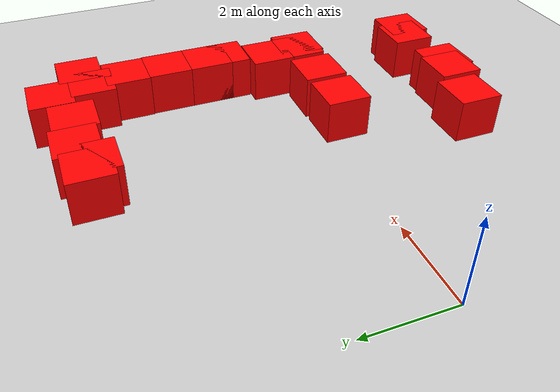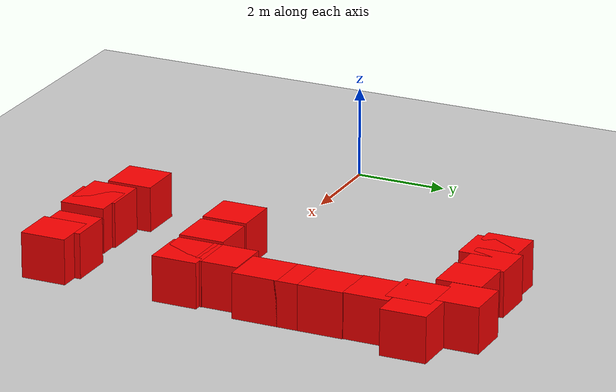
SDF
<sdf version="1.7">
 <world name="default">
  <model name="ground_plane">
   <static>1</static>
   <link name="link">
    <collision name="collision">
     <geometry><plane><normal>0 0 1</normal><size>100 100</size></plane></geometry>
     <surface><friction><ode><mu>100</mu><mu2>50</mu2></ode></friction></surface>
    </collision>
    <visual name="visual">
     <cast_shadows>0</cast_shadows>
     <geometry><plane><normal>0 0 1</normal><size>100 100</size></plane></geometry>
     <material>
      <script><uri>file://media/materials/scripts/gazebo.material</uri><name>Gazebo/Grey</name></script>
     </material>
    </visual>
   </link>
  </model>
  <model name="unit_box_clone">
   <link name="link">
    <inertial>
     <mass>1</mass>
     <inertia>
      <ixx>0.166667</ixx>
      <ixy>0</ixy>
      <ixz>0</ixz>
      <iyy>0.166667</iyy>
      <iyz>0</iyz>
      <izz>0.166667</izz>
     </inertia>
    </inertial>
    <visual name="visual">
     <geometry><box><size>1 1 1</size></box></geometry>
     <material>
      <script><name>Gazebo/Grey</name><uri>file://media/materials/scripts/gazebo.material</uri></script>
      <shader type="pixel"><normal_map>__default__</normal_map></shader>
      <ambient>1 0 0 0</ambient>
      <diffuse>0.7 0.7 0.7 1</diffuse>
      <specular>0.01 0.01 0.01 1</specular>
      <emissive>0 0 0 1</emissive>
     </material>
    </visual>
    <collision name="collision">
     <geometry><box><size>1 1 1</size></box></geometry>
     <surface>
      <friction>
       <ode><mu>1</mu><mu2>1</mu2><fdir1>0 0 0</fdir1><slip1>0</slip1><slip2>0</slip2></ode>
       <torsional>
        <coefficient>1</coefficient>
        <patch_radius>0</patch_radius>
        <surface_radius>0</surface_radius>
        <use_patch_radius>1</use_patch_radius>
        <ode><slip>0</slip></ode>
       </torsional>
      </friction>
      <bounce><restitution_coefficient>0</restitution_coefficient><threshold>1e+06</threshold></bounce>
      <contact>
       <collide_without_contact>0</collide_without_contact>
       <collide_without_contact_bitmask>1</collide_without_contact_bitmask>
       <collide_bitmask>1</collide_bitmask>
       <ode>
        <soft_cfm>0</soft_cfm>
        <soft_erp>0.2</soft_erp>
        <kp>1e+13</kp>
        <kd>1</kd>
        <max_vel>0.01</max_vel>
        <min_depth>0</min_depth>
       </ode>
       <bullet>
        <split_impulse>1</split_impulse>
        <split_impulse_penetration_threshold>-0.01</split_impulse_penetration_threshold>
        <soft_cfm>0</soft_cfm>
        <soft_erp>0.2</soft_erp>
        <kp>1e+13</kp>
        <kd>1</kd>
       </bullet>
      </contact>
     </surface>
    </collision>
   </link>
   <static>0</static>
   <pose>7.86867 -0.323281 0.5 0 -0 0</pose>
  </model>
  <model name="unit_box_clone_clone">
   <link name="link">
    <inertial>
     <mass>1</mass>
     <inertia>
      <ixx>0.166667</ixx>
      <ixy>0</ixy>
      <ixz>0</ixz>
      <iyy>0.166667</iyy>
      <iyz>0</iyz>
      <izz>0.166667</izz>
     </inertia>
    </inertial>
    <visual name="visual">
     <geometry><box><size>1 1 1</size></box></geometry>
     <material>
      <script><name>Gazebo/Grey</name><uri>file://media/materials/scripts/gazebo.material</uri></script>
      <shader type="pixel"><normal_map>__default__</normal_map></shader>
      <ambient>1 0 0 0</ambient>
      <diffuse>0.7 0.7 0.7 1</diffuse>
      <specular>0.01 0.01 0.01 1</specular>
      <emissive>0 0 0 1</emissive>
     </material>
    </visual>
    <collision name="collision">
     <geometry><box><size>1 1 1</size></box></geometry>
     <surface>
      <friction>
       <ode><mu>1</mu><mu2>1</mu2><fdir1>0 0 0</fdir1><slip1>0</slip1><slip2>0</slip2></ode>
       <torsional>
        <coefficient>1</coefficient>
        <patch_radius>0</patch_radius>
        <surface_radius>0</surface_radius>
        <use_patch_radius>1</use_patch_radius>
        <ode><slip>0</slip></ode>
       </torsional>
      </friction>
      <bounce><restitution_coefficient>0</restitution_coefficient><threshold>1e+06</threshold></bounce>
      <contact>
       <collide_without_contact>0</collide_without_contact>
       <collide_without_contact_bitmask>1</collide_without_contact_bitmask>
       <collide_bitmask>1</collide_bitmask>
       <ode>
        <soft_cfm>0</soft_cfm>
        <soft_erp>0.2</soft_erp>
        <kp>1e+13</kp>
        <kd>1</kd>
        <max_vel>0.01</max_vel>
        <min_depth>0</min_depth>
       </ode>
       <bullet>
        <split_impulse>1</split_impulse>
        <split_impulse_penetration_threshold>-0.01</split_impulse_penetration_threshold>
        <soft_cfm>0</soft_cfm>
        <soft_erp>0.2</soft_erp>
        <kp>1e+13</kp>
        <kd>1</kd>
       </bullet>
      </contact>
     </surface>
    </collision>
   </link>
   <static>0</static>
   <pose>7.54908 5.74957 0.5 0 -0 0</pose>
  </model>
  <model name="unit_box_clone_clone_8">
   <link name="link">
    <inertial>
     <mass>1</mass>
     <inertia>
      <ixx>0.166667</ixx>
      <ixy>0</ixy>
      <ixz>0</ixz>
      <iyy>0.166667</iyy>
      <iyz>0</iyz>
      <izz>0.166667</izz>
     </inertia>
    </inertial>
    <visual name="visual">
     <geometry><box><size>1 1 1</size></box></geometry>
     <material>
      <script><name>Gazebo/Grey</name><uri>file://media/materials/scripts/gazebo.material</uri></script>
      <shader type="pixel"><normal_map>__default__</normal_map></shader>
      <ambient>1 0 0 0</ambient>
      <diffuse>0.7 0.7 0.7 1</diffuse>
      <specular>0.01 0.01 0.01 1</specular>
      <emissive>0 0 0 1</emissive>
     </material>
    </visual>
    <collision name="collision">
     <geometry><box><size>1 1 1</size></box></geometry>
     <surface>
      <friction>
       <ode><mu>1</mu><mu2>1</mu2><fdir1>0 0 0</fdir1><slip1>0</slip1><slip2>0</slip2></ode>
       <torsional>
        <coefficient>1</coefficient>
        <patch_radius>0</patch_radius>
        <surface_radius>0</surface_radius>
        <use_patch_radius>1</use_patch_radius>
        <ode><slip>0</slip></ode>
       </torsional>
      </friction>
      <bounce><restitution_coefficient>0</restitution_coefficient><threshold>1e+06</threshold></bounce>
      <contact>
       <collide_without_contact>0</collide_without_contact>
       <collide_without_contact_bitmask>1</collide_without_contact_bitmask>
       <collide_bitmask>1</collide_bitmask>
       <ode>
        <soft_cfm>0</soft_cfm>
        <soft_erp>0.2</soft_erp>
        <kp>1e+13</kp>
        <kd>1</kd>
        <max_vel>0.01</max_vel>
        <min_depth>0</min_depth>
       </ode>
       <bullet>
        <split_impulse>1</split_impulse>
        <split_impulse_penetration_threshold>-0.01</split_impulse_penetration_threshold>
        <soft_cfm>0</soft_cfm>
        <soft_erp>0.2</soft_erp>
        <kp>1e+13</kp>
        <kd>1</kd>
       </bullet>
      </contact>
     </surface>
    </collision>
   </link>
   <static>0</static>
   <pose>7.88438 -3.32843 0.5 0 -0 0</pose>
  </model>
  <model name="unit_box_clone_clone_18">
   <link name="link">
    <inertial>
     <mass>1</mass>
     <inertia>
      <ixx>0.166667</ixx>
      <ixy>0</ixy>
      <ixz>0</ixz>
      <iyy>0.166667</iyy>
      <iyz>0</iyz>
      <izz>0.166667</izz>
     </inertia>
    </inertial>
    <visual name="visual">
     <geometry><box><size>1 1 1</size></box></geometry>
     <material>
      <script><name>Gazebo/Grey</name><uri>file://media/materials/scripts/gazebo.material</uri></script>
      <shader type="pixel"><normal_map>__default__</normal_map></shader>
      <ambient>1 0 0 0</ambient>
      <diffuse>0.7 0.7 0.7 1</diffuse>
      <specular>0.01 0.01 0.01 1</specular>
      <emissive>0 0 0 1</emissive>
     </material>
    </visual>
    <collision name="collision">
     <geometry><box><size>1 1 1</size></box></geometry>
     <surface>
      <friction>
       <ode><mu>1</mu><mu2>1</mu2><fdir1>0 0 0</fdir1><slip1>0</slip1><slip2>0</slip2></ode>
       <torsional>
        <coefficient>1</coefficient>
        <patch_radius>0</patch_radius>
        <surface_radius>0</surface_radius>
        <use_patch_radius>1</use_patch_radius>
        <ode><slip>0</slip></ode>
       </torsional>
      </friction>
      <bounce><restitution_coefficient>0</restitution_coefficient><threshold>1e+06</threshold></bounce>
      <contact>
       <collide_without_contact>0</collide_without_contact>
       <collide_without_contact_bitmask>1</collide_without_contact_bitmask>
       <collide_bitmask>1</collide_bitmask>
       <ode>
        <soft_cfm>0</soft_cfm>
        <soft_erp>0.2</soft_erp>
        <kp>1e+13</kp>
        <kd>1</kd>
        <max_vel>0.01</max_vel>
        <min_depth>0</min_depth>
       </ode>
       <bullet>
        <split_impulse>1</split_impulse>
        <split_impulse_penetration_threshold>-0.01</split_impulse_penetration_threshold>
        <soft_cfm>0</soft_cfm>
        <soft_erp>0.2</soft_erp>
        <kp>1e+13</kp>
        <kd>1</kd>
       </bullet>
      </contact>
     </surface>
    </collision>
   </link>
   <static>0</static>
   <pose>5.46734 -0.362794 0.5 0 -0 0</pose>
  </model>
  <model name="unit_box_clone_clone_20">
   <link name="link">
    <inertial>
     <mass>1</mass>
     <inertia>
      <ixx>0.166667</ixx>
      <ixy>0</ixy>
      <ixz>0</ixz>
      <iyy>0.166667</iyy>
      <iyz>0</iyz>
      <izz>0.166667</izz>
     </inertia>
    </inertial>
    <visual name="visual">
     <geometry><box><size>1 1 1</size></box></geometry>
     <material>
      <script><name>Gazebo/Grey</name><uri>file://media/materials/scripts/gazebo.material</uri></script>
      <shader type="pixel"><normal_map>__default__</normal_map></shader>
      <ambient>1 0 0 0</ambient>
      <diffuse>0.7 0.7 0.7 1</diffuse>
      <specular>0.01 0.01 0.01 1</specular>
      <emissive>0 0 0 1</emissive>
     </material>
    </visual>
    <collision name="collision">
     <geometry><box><size>1 1 1</size></box></geometry>
     <surface>
      <friction>
       <ode><mu>1</mu><mu2>1</mu2><fdir1>0 0 0</fdir1><slip1>0</slip1><slip2>0</slip2></ode>
       <torsional>
        <coefficient>1</coefficient>
        <patch_radius>0</patch_radius>
        <surface_radius>0</surface_radius>
        <use_patch_radius>1</use_patch_radius>
        <ode><slip>0</slip></ode>
       </torsional>
      </friction>
      <bounce><restitution_coefficient>0</restitution_coefficient><threshold>1e+06</threshold></bounce>
      <contact>
       <collide_without_contact>0</collide_without_contact>
       <collide_without_contact_bitmask>1</collide_without_contact_bitmask>
       <collide_bitmask>1</collide_bitmask>
       <ode>
        <soft_cfm>0</soft_cfm>
        <soft_erp>0.2</soft_erp>
        <kp>1e+13</kp>
        <kd>1</kd>
        <max_vel>0.01</max_vel>
        <min_depth>0</min_depth>
       </ode>
       <bullet>
        <split_impulse>1</split_impulse>
        <split_impulse_penetration_threshold>-0.01</split_impulse_penetration_threshold>
        <soft_cfm>0</soft_cfm>
        <soft_erp>0.2</soft_erp>
        <kp>1e+13</kp>
        <kd>1</kd>
       </bullet>
      </contact>
     </surface>
    </collision>
   </link>
   <static>0</static>
   <pose>5.61056 -3.34646 0.5 0 -0 0</pose>
  </model>
  <model name="unit_box_clone_clone_27">
   <link name="link">
    <inertial>
     <mass>1</mass>
     <inertia>
      <ixx>0.166667</ixx>
      <ixy>0</ixy>
      <ixz>0</ixz>
      <iyy>0.166667</iyy>
      <iyz>0</iyz>
      <izz>0.166667</izz>
     </inertia>
    </inertial>
    <visual name="visual">
     <geometry><box><size>1 1 1</size></box></geometry>
     <material>
      <script><name>Gazebo/Grey</name><uri>file://media/materials/scripts/gazebo.material</uri></script>
      <shader type="pixel"><normal_map>__default__</normal_map></shader>
      <ambient>1 0 0 0</ambient>
      <diffuse>0.7 0.7 0.7 1</diffuse>
      <specular>0.01 0.01 0.01 1</specular>
      <emissive>0 0 0 1</emissive>
     </material>
    </visual>
    <collision name="collision">
     <geometry><box><size>1 1 1</size></box></geometry>
     <surface>
      <friction>
       <ode><mu>1</mu><mu2>1</mu2><fdir1>0 0 0</fdir1><slip1>0</slip1><slip2>0</slip2></ode>
       <torsional>
        <coefficient>1</coefficient>
        <patch_radius>0</patch_radius>
        <surface_radius>0</surface_radius>
        <use_patch_radius>1</use_patch_radius>
        <ode><slip>0</slip></ode>
       </torsional>
      </friction>
      <bounce><restitution_coefficient>0</restitution_coefficient><threshold>1e+06</threshold></bounce>
      <contact>
       <collide_without_contact>0</collide_without_contact>
       <collide_without_contact_bitmask>1</collide_without_contact_bitmask>
       <collide_bitmask>1</collide_bitmask>
       <ode>
        <soft_cfm>0</soft_cfm>
        <soft_erp>0.2</soft_erp>
        <kp>1e+13</kp>
        <kd>1</kd>
        <max_vel>0.01</max_vel>
        <min_depth>0</min_depth>
       </ode>
       <bullet>
        <split_impulse>1</split_impulse>
        <split_impulse_penetration_threshold>-0.01</split_impulse_penetration_threshold>
        <soft_cfm>0</soft_cfm>
        <soft_erp>0.2</soft_erp>
        <kp>1e+13</kp>
        <kd>1</kd>
       </bullet>
      </contact>
     </surface>
    </collision>
   </link>
   <static>0</static>
   <pose>5.61051 5.46702 0.5 0 -0 0</pose>
  </model>
  <model name="unit_box_clone_clone_28">
   <link name="link">
    <inertial>
     <mass>1</mass>
     <inertia>
      <ixx>0.166667</ixx>
      <ixy>0</ixy>
      <ixz>0</ixz>
      <iyy>0.166667</iyy>
      <iyz>0</iyz>
      <izz>0.166667</izz>
     </inertia>
    </inertial>
    <visual name="visual">
     <geometry><box><size>1 1 1</size></box></geometry>
     <material>
      <script><name>Gazebo/Grey</name><uri>file://media/materials/scripts/gazebo.material</uri></script>
      <shader type="pixel"><normal_map>__default__</normal_map></shader>
      <ambient>1 0 0 0</ambient>
      <diffuse>0.7 0.7 0.7 1</diffuse>
      <specular>0.01 0.01 0.01 1</specular>
      <emissive>0 0 0 1</emissive>
     </material>
    </visual>
    <collision name="collision">
     <geometry><box><size>1 1 1</size></box></geometry>
     <surface>
      <friction>
       <ode><mu>1</mu><mu2>1</mu2><fdir1>0 0 0</fdir1><slip1>0</slip1><slip2>0</slip2></ode>
       <torsional>
        <coefficient>1</coefficient>
        <patch_radius>0</patch_radius>
        <surface_radius>0</surface_radius>
        <use_patch_radius>1</use_patch_radius>
        <ode><slip>0</slip></ode>
       </torsional>
      </friction>
      <bounce><restitution_coefficient>0</restitution_coefficient><threshold>1e+06</threshold></bounce>
      <contact>
       <collide_without_contact>0</collide_without_contact>
       <collide_without_contact_bitmask>1</collide_without_contact_bitmask>
       <collide_bitmask>1</collide_bitmask>
       <ode>
        <soft_cfm>0</soft_cfm>
        <soft_erp>0.2</soft_erp>
        <kp>1e+13</kp>
        <kd>1</kd>
        <max_vel>0.01</max_vel>
        <min_depth>0</min_depth>
       </ode>
       <bullet>
        <split_impulse>1</split_impulse>
        <split_impulse_penetration_threshold>-0.01</split_impulse_penetration_threshold>
        <soft_cfm>0</soft_cfm>
        <soft_erp>0.2</soft_erp>
        <kp>1e+13</kp>
        <kd>1</kd>
       </bullet>
      </contact>
     </surface>
    </collision>
   </link>
   <static>0</static>
   <pose>7.9782 3.98725 0.5 0 -0 0</pose>
  </model>
  <model name="unit_box_clone_clone_29">
   <link name="link">
    <inertial>
     <mass>1</mass>
     <inertia>
      <ixx>0.166667</ixx>
      <ixy>0</ixy>
      <ixz>0</ixz>
      <iyy>0.166667</iyy>
      <iyz>0</iyz>
      <izz>0.166667</izz>
     </inertia>
    </inertial>
    <visual name="visual">
     <geometry><box><size>1 1 1</size></box></geometry>
     <material>
      <script><name>Gazebo/Grey</name><uri>file://media/materials/scripts/gazebo.material</uri></script>
      <shader type="pixel"><normal_map>__default__</normal_map></shader>
      <ambient>1 0 0 0</ambient>
      <diffuse>0.7 0.7 0.7 1</diffuse>
      <specular>0.01 0.01 0.01 1</specular>
      <emissive>0 0 0 1</emissive>
     </material>
    </visual>
    <collision name="collision">
     <geometry><box><size>1 1 1</size></box></geometry>
     <surface>
      <friction>
       <ode><mu>1</mu><mu2>1</mu2><fdir1>0 0 0</fdir1><slip1>0</slip1><slip2>0</slip2></ode>
       <torsional>
        <coefficient>1</coefficient>
        <patch_radius>0</patch_radius>
        <surface_radius>0</surface_radius>
        <use_patch_radius>1</use_patch_radius>
        <ode><slip>0</slip></ode>
       </torsional>
      </friction>
      <bounce><restitution_coefficient>0</restitution_coefficient><threshold>1e+06</threshold></bounce>
      <contact>
       <collide_without_contact>0</collide_without_contact>
       <collide_without_contact_bitmask>1</collide_without_contact_bitmask>
       <collide_bitmask>1</collide_bitmask>
       <ode>
        <soft_cfm>0</soft_cfm>
        <soft_erp>0.2</soft_erp>
        <kp>1e+13</kp>
        <kd>1</kd>
        <max_vel>0.01</max_vel>
        <min_depth>0</min_depth>
       </ode>
       <bullet>
        <split_impulse>1</split_impulse>
        <split_impulse_penetration_threshold>-0.01</split_impulse_penetration_threshold>
        <soft_cfm>0</soft_cfm>
        <soft_erp>0.2</soft_erp>
        <kp>1e+13</kp>
        <kd>1</kd>
       </bullet>
      </contact>
     </surface>
    </collision>
   </link>
   <static>0</static>
   <pose>8 3 0.5 0 -0 0</pose>
  </model>
  <model name="unit_box_clone_clone_30">
   <link name="link">
    <inertial>
     <mass>1</mass>
     <inertia>
      <ixx>0.166667</ixx>
      <ixy>0</ixy>
      <ixz>0</ixz>
      <iyy>0.166667</iyy>
      <iyz>0</iyz>
      <izz>0.166667</izz>
     </inertia>
    </inertial>
    <visual name="visual">
     <geometry><box><size>1 1 1</size></box></geometry>
     <material>
      <script><name>Gazebo/Grey</name><uri>file://media/materials/scripts/gazebo.material</uri></script>
      <shader type="pixel"><normal_map>__default__</normal_map></shader>
      <ambient>1 0 0 0</ambient>
      <diffuse>0.7 0.7 0.7 1</diffuse>
      <specular>0.01 0.01 0.01 1</specular>
      <emissive>0 0 0 1</emissive>
     </material>
    </visual>
    <collision name="collision">
     <geometry><box><size>1 1 1</size></box></geometry>
     <surface>
      <friction>
       <ode><mu>1</mu><mu2>1</mu2><fdir1>0 0 0</fdir1><slip1>0</slip1><slip2>0</slip2></ode>
       <torsional>
        <coefficient>1</coefficient>
        <patch_radius>0</patch_radius>
        <surface_radius>0</surface_radius>
        <use_patch_radius>1</use_patch_radius>
        <ode><slip>0</slip></ode>
       </torsional>
      </friction>
      <bounce><restitution_coefficient>0</restitution_coefficient><threshold>1e+06</threshold></bounce>
      <contact>
       <collide_without_contact>0</collide_without_contact>
       <collide_without_contact_bitmask>1</collide_without_contact_bitmask>
       <collide_bitmask>1</collide_bitmask>
       <ode>
        <soft_cfm>0</soft_cfm>
        <soft_erp>0.2</soft_erp>
        <kp>1e+13</kp>
        <kd>1</kd>
        <max_vel>0.01</max_vel>
        <min_depth>0</min_depth>
       </ode>
       <bullet>
        <split_impulse>1</split_impulse>
        <split_impulse_penetration_threshold>-0.01</split_impulse_penetration_threshold>
        <soft_cfm>0</soft_cfm>
        <soft_erp>0.2</soft_erp>
        <kp>1e+13</kp>
        <kd>1</kd>
       </bullet>
      </contact>
     </surface>
    </collision>
   </link>
   <static>0</static>
   <pose>8 1.54814 0.5 0 -0 0</pose>
  </model>
  <model name="unit_box_clone_clone_31">
   <link name="link">
    <inertial>
     <mass>1</mass>
     <inertia>
      <ixx>0.166667</ixx>
      <ixy>0</ixy>
      <ixz>0</ixz>
      <iyy>0.166667</iyy>
      <iyz>0</iyz>
      <izz>0.166667</izz>
     </inertia>
    </inertial>
    <visual name="visual">
     <geometry><box><size>1 1 1</size></box></geometry>
     <material>
      <script><name>Gazebo/Grey</name><uri>file://media/materials/scripts/gazebo.material</uri></script>
      <shader type="pixel"><normal_map>__default__</normal_map></shader>
      <ambient>1 0 0 0</ambient>
      <diffuse>0.7 0.7 0.7 1</diffuse>
      <specular>0.01 0.01 0.01 1</specular>
      <emissive>0 0 0 1</emissive>
     </material>
    </visual>
    <collision name="collision">
     <geometry><box><size>1 1 1</size></box></geometry>
     <surface>
      <friction>
       <ode><mu>1</mu><mu2>1</mu2><fdir1>0 0 0</fdir1><slip1>0</slip1><slip2>0</slip2></ode>
       <torsional>
        <coefficient>1</coefficient>
        <patch_radius>0</patch_radius>
        <surface_radius>0</surface_radius>
        <use_patch_radius>1</use_patch_radius>
        <ode><slip>0</slip></ode>
       </torsional>
      </friction>
      <bounce><restitution_coefficient>0</restitution_coefficient><threshold>1e+06</threshold></bounce>
      <contact>
       <collide_without_contact>0</collide_without_contact>
       <collide_without_contact_bitmask>1</collide_without_contact_bitmask>
       <collide_bitmask>1</collide_bitmask>
       <ode>
        <soft_cfm>0</soft_cfm>
        <soft_erp>0.2</soft_erp>
        <kp>1e+13</kp>
        <kd>1</kd>
        <max_vel>0.01</max_vel>
        <min_depth>0</min_depth>
       </ode>
       <bullet>
        <split_impulse>1</split_impulse>
        <split_impulse_penetration_threshold>-0.01</split_impulse_penetration_threshold>
        <soft_cfm>0</soft_cfm>
        <soft_erp>0.2</soft_erp>
        <kp>1e+13</kp>
        <kd>1</kd>
       </bullet>
      </contact>
     </surface>
    </collision>
   </link>
   <static>0</static>
   <pose>8 2 0.5 0 -0 0</pose>
  </model>
  <model name="unit_box_clone_clone_32">
   <link name="link">
    <inertial>
     <mass>1</mass>
     <inertia>
      <ixx>0.166667</ixx>
      <ixy>0</ixy>
      <ixz>0</ixz>
      <iyy>0.166667</iyy>
      <iyz>0</iyz>
      <izz>0.166667</izz>
     </inertia>
    </inertial>
    <visual name="visual">
     <geometry><box><size>1 1 1</size></box></geometry>
     <material>
      <script><name>Gazebo/Grey</name><uri>file://media/materials/scripts/gazebo.material</uri></script>
      <shader type="pixel"><normal_map>__default__</normal_map></shader>
      <ambient>1 0 0 0</ambient>
      <diffuse>0.7 0.7 0.7 1</diffuse>
      <specular>0.01 0.01 0.01 1</specular>
      <emissive>0 0 0 1</emissive>
     </material>
    </visual>
    <collision name="collision">
     <geometry><box><size>1 1 1</size></box></geometry>
     <surface>
      <friction>
       <ode><mu>1</mu><mu2>1</mu2><fdir1>0 0 0</fdir1><slip1>0</slip1><slip2>0</slip2></ode>
       <torsional>
        <coefficient>1</coefficient>
        <patch_radius>0</patch_radius>
        <surface_radius>0</surface_radius>
        <use_patch_radius>1</use_patch_radius>
        <ode><slip>0</slip></ode>
       </torsional>
      </friction>
      <bounce><restitution_coefficient>0</restitution_coefficient><threshold>1e+06</threshold></bounce>
      <contact>
       <collide_without_contact>0</collide_without_contact>
       <collide_without_contact_bitmask>1</collide_without_contact_bitmask>
       <collide_bitmask>1</collide_bitmask>
       <ode>
        <soft_cfm>0</soft_cfm>
        <soft_erp>0.2</soft_erp>
        <kp>1e+13</kp>
        <kd>1</kd>
        <max_vel>0.01</max_vel>
        <min_depth>0</min_depth>
       </ode>
       <bullet>
        <split_impulse>1</split_impulse>
        <split_impulse_penetration_threshold>-0.01</split_impulse_penetration_threshold>
        <soft_cfm>0</soft_cfm>
        <soft_erp>0.2</soft_erp>
        <kp>1e+13</kp>
        <kd>1</kd>
       </bullet>
      </contact>
     </surface>
    </collision>
   </link>
   <static>0</static>
   <pose>7.71213 0.525027 0.5 0 -0 0</pose>
  </model>
  <model name="unit_box_clone_clone_33">
   <link name="link">
    <inertial>
     <mass>1</mass>
     <inertia>
      <ixx>0.166667</ixx>
      <ixy>0</ixy>
      <ixz>0</ixz>
      <iyy>0.166667</iyy>
      <iyz>0</iyz>
      <izz>0.166667</izz>
     </inertia>
    </inertial>
    <visual name="visual">
     <geometry><box><size>1 1 1</size></box></geometry>
     <material>
      <script><name>Gazebo/Grey</name><uri>file://media/materials/scripts/gazebo.material</uri></script>
      <shader type="pixel"><normal_map>__default__</normal_map></shader>
      <ambient>1 0 0 0</ambient>
      <diffuse>0.7 0.7 0.7 1</diffuse>
      <specular>0.01 0.01 0.01 1</specular>
      <emissive>0 0 0 1</emissive>
     </material>
    </visual>
    <collision name="collision">
     <geometry><box><size>1 1 1</size></box></geometry>
     <surface>
      <friction>
       <ode><mu>1</mu><mu2>1</mu2><fdir1>0 0 0</fdir1><slip1>0</slip1><slip2>0</slip2></ode>
       <torsional>
        <coefficient>1</coefficient>
        <patch_radius>0</patch_radius>
        <surface_radius>0</surface_radius>
        <use_patch_radius>1</use_patch_radius>
        <ode><slip>0</slip></ode>
       </torsional>
      </friction>
      <bounce><restitution_coefficient>0</restitution_coefficient><threshold>1e+06</threshold></bounce>
      <contact>
       <collide_without_contact>0</collide_without_contact>
       <collide_without_contact_bitmask>1</collide_without_contact_bitmask>
       <collide_bitmask>1</collide_bitmask>
       <ode>
        <soft_cfm>0</soft_cfm>
        <soft_erp>0.2</soft_erp>
        <kp>1e+13</kp>
        <kd>1</kd>
        <max_vel>0.01</max_vel>
        <min_depth>0</min_depth>
       </ode>
       <bullet>
        <split_impulse>1</split_impulse>
        <split_impulse_penetration_threshold>-0.01</split_impulse_penetration_threshold>
        <soft_cfm>0</soft_cfm>
        <soft_erp>0.2</soft_erp>
        <kp>1e+13</kp>
        <kd>1</kd>
       </bullet>
      </contact>
     </surface>
    </collision>
   </link>
   <static>0</static>
   <pose>7.72473 -0.278843 0.5 0 -0 0</pose>
  </model>
  <model name="unit_box_clone_clone_34">
   <link name="link">
    <inertial>
     <mass>1</mass>
     <inertia>
      <ixx>0.166667</ixx>
      <ixy>0</ixy>
      <ixz>0</ixz>
      <iyy>0.166667</iyy>
      <iyz>0</iyz>
      <izz>0.166667</izz>
     </inertia>
    </inertial>
    <visual name="visual">
     <geometry><box><size>1 1 1</size></box></geometry>
     <material>
      <script><name>Gazebo/Grey</name><uri>file://media/materials/scripts/gazebo.material</uri></script>
      <shader type="pixel"><normal_map>__default__</normal_map></shader>
      <ambient>1 0 0 0</ambient>
      <diffuse>0.7 0.7 0.7 1</diffuse>
      <specular>0.01 0.01 0.01 1</specular>
      <emissive>0 0 0 1</emissive>
     </material>
    </visual>
    <collision name="collision">
     <geometry><box><size>1 1 1</size></box></geometry>
     <surface>
      <friction>
       <ode><mu>1</mu><mu2>1</mu2><fdir1>0 0 0</fdir1><slip1>0</slip1><slip2>0</slip2></ode>
       <torsional>
        <coefficient>1</coefficient>
        <patch_radius>0</patch_radius>
        <surface_radius>0</surface_radius>
        <use_patch_radius>1</use_patch_radius>
        <ode><slip>0</slip></ode>
       </torsional>
      </friction>
      <bounce><restitution_coefficient>0</restitution_coefficient><threshold>1e+06</threshold></bounce>
      <contact>
       <collide_without_contact>0</collide_without_contact>
       <collide_without_contact_bitmask>1</collide_without_contact_bitmask>
       <collide_bitmask>1</collide_bitmask>
       <ode>
        <soft_cfm>0</soft_cfm>
        <soft_erp>0.2</soft_erp>
        <kp>1e+13</kp>
        <kd>1</kd>
        <max_vel>0.01</max_vel>
        <min_depth>0</min_depth>
       </ode>
       <bullet>
        <split_impulse>1</split_impulse>
        <split_impulse_penetration_threshold>-0.01</split_impulse_penetration_threshold>
        <soft_cfm>0</soft_cfm>
        <soft_erp>0.2</soft_erp>
        <kp>1e+13</kp>
        <kd>1</kd>
       </bullet>
      </contact>
     </surface>
    </collision>
   </link>
   <static>0</static>
   <pose>6.5942 -0.337367 0.5 0 -0 0</pose>
  </model>
  <model name="unit_box_clone_clone_43">
   <link name="link">
    <inertial>
     <mass>1</mass>
     <inertia>
      <ixx>0.166667</ixx>
      <ixy>0</ixy>
      <ixz>0</ixz>
      <iyy>0.166667</iyy>
      <iyz>0</iyz>
      <izz>0.166667</izz>
     </inertia>
    </inertial>
    <visual name="visual">
     <geometry><box><size>1 1 1</size></box></geometry>
     <material>
      <script><name>Gazebo/Grey</name><uri>file://media/materials/scripts/gazebo.material</uri></script>
      <shader type="pixel"><normal_map>__default__</normal_map></shader>
      <ambient>1 0 0 0</ambient>
      <diffuse>0.7 0.7 0.7 1</diffuse>
      <specular>0.01 0.01 0.01 1</specular>
      <emissive>0 0 0 1</emissive>
     </material>
    </visual>
    <collision name="collision">
     <geometry><box><size>1 1 1</size></box></geometry>
     <surface>
      <friction>
       <ode><mu>1</mu><mu2>1</mu2><fdir1>0 0 0</fdir1><slip1>0</slip1><slip2>0</slip2></ode>
       <torsional>
        <coefficient>1</coefficient>
        <patch_radius>0</patch_radius>
        <surface_radius>0</surface_radius>
        <use_patch_radius>1</use_patch_radius>
        <ode><slip>0</slip></ode>
       </torsional>
      </friction>
      <bounce><restitution_coefficient>0</restitution_coefficient><threshold>1e+06</threshold></bounce>
      <contact>
       <collide_without_contact>0</collide_without_contact>
       <collide_without_contact_bitmask>1</collide_without_contact_bitmask>
       <collide_bitmask>1</collide_bitmask>
       <ode>
        <soft_cfm>0</soft_cfm>
        <soft_erp>0.2</soft_erp>
        <kp>1e+13</kp>
        <kd>1</kd>
        <max_vel>0.01</max_vel>
        <min_depth>0</min_depth>
       </ode>
       <bullet>
        <split_impulse>1</split_impulse>
        <split_impulse_penetration_threshold>-0.01</split_impulse_penetration_threshold>
        <soft_cfm>0</soft_cfm>
        <soft_erp>0.2</soft_erp>
        <kp>1e+13</kp>
        <kd>1</kd>
       </bullet>
      </contact>
     </surface>
    </collision>
   </link>
   <static>0</static>
   <pose>4.96868 5.19912 0.5 0 -0 0</pose>
  </model>
  <model name="unit_box_clone_clone_44">
   <link name="link">
    <inertial>
     <mass>1</mass>
     <inertia>
      <ixx>0.166667</ixx>
      <ixy>0</ixy>
      <ixz>0</ixz>
      <iyy>0.166667</iyy>
      <iyz>0</iyz>
      <izz>0.166667</izz>
     </inertia>
    </inertial>
    <visual name="visual">
     <geometry><box><size>1 1 1</size></box></geometry>
     <material>
      <script><name>Gazebo/Grey</name><uri>file://media/materials/scripts/gazebo.material</uri></script>
      <shader type="pixel"><normal_map>__default__</normal_map></shader>
      <ambient>1 0 0 0</ambient>
      <diffuse>0.7 0.7 0.7 1</diffuse>
      <specular>0.01 0.01 0.01 1</specular>
      <emissive>0 0 0 1</emissive>
     </material>
    </visual>
    <collision name="collision">
     <geometry><box><size>1 1 1</size></box></geometry>
     <surface>
      <friction>
       <ode><mu>1</mu><mu2>1</mu2><fdir1>0 0 0</fdir1><slip1>0</slip1><slip2>0</slip2></ode>
       <torsional>
        <coefficient>1</coefficient>
        <patch_radius>0</patch_radius>
        <surface_radius>0</surface_radius>
        <use_patch_radius>1</use_patch_radius>
        <ode><slip>0</slip></ode>
       </torsional>
      </friction>
      <bounce><restitution_coefficient>0</restitution_coefficient><threshold>1e+06</threshold></bounce>
      <contact>
       <collide_without_contact>0</collide_without_contact>
       <collide_without_contact_bitmask>1</collide_without_contact_bitmask>
       <collide_bitmask>1</collide_bitmask>
       <ode>
        <soft_cfm>0</soft_cfm>
        <soft_erp>0.2</soft_erp>
        <kp>1e+13</kp>
        <kd>1</kd>
        <max_vel>0.01</max_vel>
        <min_depth>0</min_depth>
       </ode>
       <bullet>
        <split_impulse>1</split_impulse>
        <split_impulse_penetration_threshold>-0.01</split_impulse_penetration_threshold>
        <soft_cfm>0</soft_cfm>
        <soft_erp>0.2</soft_erp>
        <kp>1e+13</kp>
        <kd>1</kd>
       </bullet>
      </contact>
     </surface>
    </collision>
   </link>
   <static>0</static>
   <pose>4.75783 5.34832 0.5 0 -0 0</pose>
  </model>
  <model name="unit_box_clone_clone_45">
   <link name="link">
    <inertial>
     <mass>1</mass>
     <inertia>
      <ixx>0.166667</ixx>
      <ixy>0</ixy>
      <ixz>0</ixz>
      <iyy>0.166667</iyy>
      <iyz>0</iyz>
      <izz>0.166667</izz>
     </inertia>
    </inertial>
    <visual name="visual">
     <geometry><box><size>1 1 1</size></box></geometry>
     <material>
      <script><name>Gazebo/Grey</name><uri>file://media/materials/scripts/gazebo.material</uri></script>
      <shader type="pixel"><normal_map>__default__</normal_map></shader>
      <ambient>1 0 0 0</ambient>
      <diffuse>0.7 0.7 0.7 1</diffuse>
      <specular>0.01 0.01 0.01 1</specular>
      <emissive>0 0 0 1</emissive>
     </material>
    </visual>
    <collision name="collision">
     <geometry><box><size>1 1 1</size></box></geometry>
     <surface>
      <friction>
       <ode><mu>1</mu><mu2>1</mu2><fdir1>0 0 0</fdir1><slip1>0</slip1><slip2>0</slip2></ode>
       <torsional>
        <coefficient>1</coefficient>
        <patch_radius>0</patch_radius>
        <surface_radius>0</surface_radius>
        <use_patch_radius>1</use_patch_radius>
        <ode><slip>0</slip></ode>
       </torsional>
      </friction>
      <bounce><restitution_coefficient>0</restitution_coefficient><threshold>1e+06</threshold></bounce>
      <contact>
       <collide_without_contact>0</collide_without_contact>
       <collide_without_contact_bitmask>1</collide_without_contact_bitmask>
       <collide_bitmask>1</collide_bitmask>
       <ode>
        <soft_cfm>0</soft_cfm>
        <soft_erp>0.2</soft_erp>
        <kp>1e+13</kp>
        <kd>1</kd>
        <max_vel>0.01</max_vel>
        <min_depth>0</min_depth>
       </ode>
       <bullet>
        <split_impulse>1</split_impulse>
        <split_impulse_penetration_threshold>-0.01</split_impulse_penetration_threshold>
        <soft_cfm>0</soft_cfm>
        <soft_erp>0.2</soft_erp>
        <kp>1e+13</kp>
        <kd>1</kd>
       </bullet>
      </contact>
     </surface>
    </collision>
   </link>
   <static>0</static>
   <pose>6.53965 5.3828 0.5 0 -0 0</pose>
  </model>
  <model name="unit_box_clone_clone_46">
   <link name="link">
    <inertial>
     <mass>1</mass>
     <inertia>
      <ixx>0.166667</ixx>
      <ixy>0</ixy>
      <ixz>0</ixz>
      <iyy>0.166667</iyy>
      <iyz>0</iyz>
      <izz>0.166667</izz>
     </inertia>
    </inertial>
    <visual name="visual">
     <geometry><box><size>1 1 1</size></box></geometry>
     <material>
      <script><name>Gazebo/Grey</name><uri>file://media/materials/scripts/gazebo.material</uri></script>
      <shader type="pixel"><normal_map>__default__</normal_map></shader>
      <ambient>1 0 0 0</ambient>
      <diffuse>0.7 0.7 0.7 1</diffuse>
      <specular>0.01 0.01 0.01 1</specular>
      <emissive>0 0 0 1</emissive>
     </material>
    </visual>
    <collision name="collision">
     <geometry><box><size>1 1 1</size></box></geometry>
     <surface>
      <friction>
       <ode><mu>1</mu><mu2>1</mu2><fdir1>0 0 0</fdir1><slip1>0</slip1><slip2>0</slip2></ode>
       <torsional>
        <coefficient>1</coefficient>
        <patch_radius>0</patch_radius>
        <surface_radius>0</surface_radius>
        <use_patch_radius>1</use_patch_radius>
        <ode><slip>0</slip></ode>
       </torsional>
      </friction>
      <bounce><restitution_coefficient>0</restitution_coefficient><threshold>1e+06</threshold></bounce>
      <contact>
       <collide_without_contact>0</collide_without_contact>
       <collide_without_contact_bitmask>1</collide_without_contact_bitmask>
       <collide_bitmask>1</collide_bitmask>
       <ode>
        <soft_cfm>0</soft_cfm>
        <soft_erp>0.2</soft_erp>
        <kp>1e+13</kp>
        <kd>1</kd>
        <max_vel>0.01</max_vel>
        <min_depth>0</min_depth>
       </ode>
       <bullet>
        <split_impulse>1</split_impulse>
        <split_impulse_penetration_threshold>-0.01</split_impulse_penetration_threshold>
        <soft_cfm>0</soft_cfm>
        <soft_erp>0.2</soft_erp>
        <kp>1e+13</kp>
        <kd>1</kd>
       </bullet>
      </contact>
     </surface>
    </collision>
   </link>
   <static>0</static>
   <pose>8.4314 5 0.5 0 -0 0</pose>
  </model>
  <model name="unit_box_clone_clone_47">
   <link name="link">
    <inertial>
     <mass>1</mass>
     <inertia>
      <ixx>0.166667</ixx>
      <ixy>0</ixy>
      <ixz>0</ixz>
      <iyy>0.166667</iyy>
      <iyz>0</iyz>
      <izz>0.166667</izz>
     </inertia>
    </inertial>
    <visual name="visual">
     <geometry><box><size>1 1 1</size></box></geometry>
     <material>
      <script><name>Gazebo/Grey</name><uri>file://media/materials/scripts/gazebo.material</uri></script>
      <shader type="pixel"><normal_map>__default__</normal_map></shader>
      <ambient>1 0 0 0</ambient>
      <diffuse>0.7 0.7 0.7 1</diffuse>
      <specular>0.01 0.01 0.01 1</specular>
      <emissive>0 0 0 1</emissive>
     </material>
    </visual>
    <collision name="collision">
     <geometry><box><size>1 1 1</size></box></geometry>
     <surface>
      <friction>
       <ode><mu>1</mu><mu2>1</mu2><fdir1>0 0 0</fdir1><slip1>0</slip1><slip2>0</slip2></ode>
       <torsional>
        <coefficient>1</coefficient>
        <patch_radius>0</patch_radius>
        <surface_radius>0</surface_radius>
        <use_patch_radius>1</use_patch_radius>
        <ode><slip>0</slip></ode>
       </torsional>
      </friction>
      <bounce><restitution_coefficient>0</restitution_coefficient><threshold>1e+06</threshold></bounce>
      <contact>
       <collide_without_contact>0</collide_without_contact>
       <collide_without_contact_bitmask>1</collide_without_contact_bitmask>
       <collide_bitmask>1</collide_bitmask>
       <ode>
        <soft_cfm>0</soft_cfm>
        <soft_erp>0.2</soft_erp>
        <kp>1e+13</kp>
        <kd>1</kd>
        <max_vel>0.01</max_vel>
        <min_depth>0</min_depth>
       </ode>
       <bullet>
        <split_impulse>1</split_impulse>
        <split_impulse_penetration_threshold>-0.01</split_impulse_penetration_threshold>
        <soft_cfm>0</soft_cfm>
        <soft_erp>0.2</soft_erp>
        <kp>1e+13</kp>
        <kd>1</kd>
       </bullet>
      </contact>
     </surface>
    </collision>
   </link>
   <static>0</static>
   <pose>7.77652 4.81648 0.5 0 -0 0</pose>
  </model>
  <model name="unit_box_clone_clone_48">
   <link name="link">
    <inertial>
     <mass>1</mass>
     <inertia>
      <ixx>0.166667</ixx>
      <ixy>0</ixy>
      <ixz>0</ixz>
      <iyy>0.166667</iyy>
      <iyz>0</iyz>
      <izz>0.166667</izz>
     </inertia>
    </inertial>
    <visual name="visual">
     <geometry><box><size>1 1 1</size></box></geometry>
     <material>
      <script><name>Gazebo/Grey</name><uri>file://media/materials/scripts/gazebo.material</uri></script>
      <shader type="pixel"><normal_map>__default__</normal_map></shader>
      <ambient>1 0 0 0</ambient>
      <diffuse>0.7 0.7 0.7 1</diffuse>
      <specular>0.01 0.01 0.01 1</specular>
      <emissive>0 0 0 1</emissive>
     </material>
    </visual>
    <collision name="collision">
     <geometry><box><size>1 1 1</size></box></geometry>
     <surface>
      <friction>
       <ode><mu>1</mu><mu2>1</mu2><fdir1>0 0 0</fdir1><slip1>0</slip1><slip2>0</slip2></ode>
       <torsional>
        <coefficient>1</coefficient>
        <patch_radius>0</patch_radius>
        <surface_radius>0</surface_radius>
        <use_patch_radius>1</use_patch_radius>
        <ode><slip>0</slip></ode>
       </torsional>
      </friction>
      <bounce><restitution_coefficient>0</restitution_coefficient><threshold>1e+06</threshold></bounce>
      <contact>
       <collide_without_contact>0</collide_without_contact>
       <collide_without_contact_bitmask>1</collide_without_contact_bitmask>
       <collide_bitmask>1</collide_bitmask>
       <ode>
        <soft_cfm>0</soft_cfm>
        <soft_erp>0.2</soft_erp>
        <kp>1e+13</kp>
        <kd>1</kd>
        <max_vel>0.01</max_vel>
        <min_depth>0</min_depth>
       </ode>
       <bullet>
        <split_impulse>1</split_impulse>
        <split_impulse_penetration_threshold>-0.01</split_impulse_penetration_threshold>
        <soft_cfm>0</soft_cfm>
        <soft_erp>0.2</soft_erp>
        <kp>1e+13</kp>
        <kd>1</kd>
       </bullet>
      </contact>
     </surface>
    </collision>
   </link>
   <static>0</static>
   <pose>7.45295 -3.19537 0.5 0 -0 0</pose>
  </model>
  <model name="unit_box_clone_clone_49">
   <link name="link">
    <inertial>
     <mass>1</mass>
     <inertia>
      <ixx>0.166667</ixx>
      <ixy>0</ixy>
      <ixz>0</ixz>
      <iyy>0.166667</iyy>
      <iyz>0</iyz>
      <izz>0.166667</izz>
     </inertia>
    </inertial>
    <visual name="visual">
     <geometry><box><size>1 1 1</size></box></geometry>
     <material>
      <script><name>Gazebo/Grey</name><uri>file://media/materials/scripts/gazebo.material</uri></script>
      <shader type="pixel"><normal_map>__default__</normal_map></shader>
      <ambient>1 0 0 0</ambient>
      <diffuse>0.7 0.7 0.7 1</diffuse>
      <specular>0.01 0.01 0.01 1</specular>
      <emissive>0 0 0 1</emissive>
     </material>
    </visual>
    <collision name="collision">
     <geometry><box><size>1 1 1</size></box></geometry>
     <surface>
      <friction>
       <ode><mu>1</mu><mu2>1</mu2><fdir1>0 0 0</fdir1><slip1>0</slip1><slip2>0</slip2></ode>
       <torsional>
        <coefficient>1</coefficient>
        <patch_radius>0</patch_radius>
        <surface_radius>0</surface_radius>
        <use_patch_radius>1</use_patch_radius>
        <ode><slip>0</slip></ode>
       </torsional>
      </friction>
      <bounce><restitution_coefficient>0</restitution_coefficient><threshold>1e+06</threshold></bounce>
      <contact>
       <collide_without_contact>0</collide_without_contact>
       <collide_without_contact_bitmask>1</collide_without_contact_bitmask>
       <collide_bitmask>1</collide_bitmask>
       <ode>
        <soft_cfm>0</soft_cfm>
        <soft_erp>0.2</soft_erp>
        <kp>1e+13</kp>
        <kd>1</kd>
        <max_vel>0.01</max_vel>
        <min_depth>0</min_depth>
       </ode>
       <bullet>
        <split_impulse>1</split_impulse>
        <split_impulse_penetration_threshold>-0.01</split_impulse_penetration_threshold>
        <soft_cfm>0</soft_cfm>
        <soft_erp>0.2</soft_erp>
        <kp>1e+13</kp>
        <kd>1</kd>
       </bullet>
      </contact>
     </surface>
    </collision>
   </link>
   <static>0</static>
   <pose>6 -3.41082 0.5 0 -0 0</pose>
  </model>
  <model name="unit_box_clone_clone_50">
   <link name="link">
    <inertial>
     <mass>1</mass>
     <inertia>
      <ixx>0.166667</ixx>
      <ixy>0</ixy>
      <ixz>0</ixz>
      <iyy>0.166667</iyy>
      <iyz>0</iyz>
      <izz>0.166667</izz>
     </inertia>
    </inertial>
    <visual name="visual">
     <geometry><box><size>1 1 1</size></box></geometry>
     <material>
      <script><name>Gazebo/Grey</name><uri>file://media/materials/scripts/gazebo.material</uri></script>
      <shader type="pixel"><normal_map>__default__</normal_map></shader>
      <ambient>1 0 0 0</ambient>
      <diffuse>0.7 0.7 0.7 1</diffuse>
      <specular>0.01 0.01 0.01 1</specular>
      <emissive>0 0 0 1</emissive>
     </material>
    </visual>
    <collision name="collision">
     <geometry><box><size>1 1 1</size></box></geometry>
     <surface>
      <friction>
       <ode><mu>1</mu><mu2>1</mu2><fdir1>0 0 0</fdir1><slip1>0</slip1><slip2>0</slip2></ode>
       <torsional>
        <coefficient>1</coefficient>
        <patch_radius>0</patch_radius>
        <surface_radius>0</surface_radius>
        <use_patch_radius>1</use_patch_radius>
        <ode><slip>0</slip></ode>
       </torsional>
      </friction>
      <bounce><restitution_coefficient>0</restitution_coefficient><threshold>1e+06</threshold></bounce>
      <contact>
       <collide_without_contact>0</collide_without_contact>
       <collide_without_contact_bitmask>1</collide_without_contact_bitmask>
       <collide_bitmask>1</collide_bitmask>
       <ode>
        <soft_cfm>0</soft_cfm>
        <soft_erp>0.2</soft_erp>
        <kp>1e+13</kp>
        <kd>1</kd>
        <max_vel>0.01</max_vel>
        <min_depth>0</min_depth>
       </ode>
       <bullet>
        <split_impulse>1</split_impulse>
        <split_impulse_penetration_threshold>-0.01</split_impulse_penetration_threshold>
        <soft_cfm>0</soft_cfm>
        <soft_erp>0.2</soft_erp>
        <kp>1e+13</kp>
        <kd>1</kd>
       </bullet>
      </contact>
     </surface>
    </collision>
   </link>
   <static>0</static>
   <pose>4.48764 -3.08742 0.5 0 -0 0</pose>
  </model>
 </world>
</sdf>
